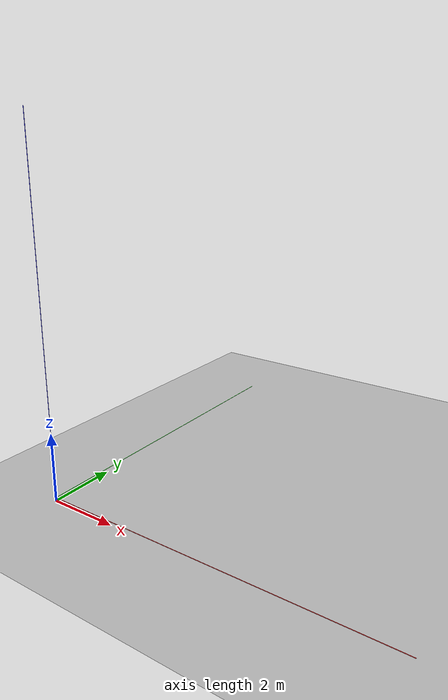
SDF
<sdf version="1.9">
 <world name="iris_runway">
  <physics name="1ms" type="ignore">
   <max_step_size>0.001</max_step_size>
   <real_time_factor>1.0</real_time_factor>
  </physics>
  <plugin filename="gz-sim-physics-system" name="gz::sim::systems::Physics"/>
  <plugin filename="gz-sim-sensors-system" name="gz::sim::systems::Sensors">
   <render_engine>ogre2</render_engine>
  </plugin>
  <plugin filename="gz-sim-user-commands-system" name="gz::sim::systems::UserCommands"/>
  <plugin filename="gz-sim-scene-broadcaster-system" name="gz::sim::systems::SceneBroadcaster"/>
  <plugin filename="gz-sim-imu-system" name="gz::sim::systems::Imu"/>
  <plugin filename="gz-sim-navsat-system" name="gz::sim::systems::NavSat"/>
  <scene><ambient>1.0 1.0 1.0</ambient><background>0.8 0.8 0.8</background></scene>
  <spherical_coordinates>
   <latitude_deg>-35.363262</latitude_deg>
   <longitude_deg>149.165237</longitude_deg>
   <elevation>584</elevation>
   <heading_deg>0</heading_deg>
   <surface_model>EARTH_WGS84</surface_model>
  </spherical_coordinates>
  <light type="directional" name="sun">
   <pose>0 0 10 0 0 0</pose>
   <diffuse>0.8 0.8 0.8 1</diffuse>
   <specular>0.8 0.8 0.8 1</specular>
   <attenuation>
    <range>1000</range>
    <constant>0.9</constant>
    <linear>0.01</linear>
    <quadratic>0.001</quadratic>
   </attenuation>
   <direction>-0.5 0.1 -0.9</direction>
  </light>
  <model name="axes">
   <static>1</static>
   <link name="link">
    <visual name="r">
     <cast_shadows>0</cast_shadows>
     <pose>5 0 0.1 0 0 0</pose>
     <geometry><box><size>10 0.01 0.01</size></box></geometry>
     <material>
      <ambient>1 0 0 0.8</ambient>
      <diffuse>1 0 0 0.8</diffuse>
      <emissive>1 0 0 0.8</emissive>
      <specular>0.5 0.5 0.5 0.8</specular>
     </material>
    </visual>
    <visual name="g">
     <cast_shadows>0</cast_shadows>
     <pose>0 5 0.1 0 0 0</pose>
     <geometry><box><size>0.01 10 0.01</size></box></geometry>
     <material>
      <ambient>0 1 0 0.8</ambient>
      <diffuse>0 1 0 0.8</diffuse>
      <emissive>0 1 0 0.8</emissive>
      <specular>0.5 0.5 0.5 0.8</specular>
     </material>
    </visual>
    <visual name="b">
     <cast_shadows>0</cast_shadows>
     <pose>0 0 5.1 0 0 0</pose>
     <geometry><box><size>0.01 0.01 10</size></box></geometry>
     <material>
      <ambient>0 0 1 0.8</ambient>
      <diffuse>0 0 1 0.8</diffuse>
      <emissive>0 0 1 0.8</emissive>
      <specular>0.5 0.5 0.5 0.8</specular>
     </material>
    </visual>
    <sensor name="navsat_sensor" type="navsat"><always_on>1</always_on><update_rate>1</update_rate></sensor>
   </link>
  </model>
  <include><uri>model://arena</uri><pose>0 0 0.047 0 0 0</pose></include>
 </world>
</sdf>

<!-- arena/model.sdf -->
<sdf version="1.4">

    <model name="arena">
      <pose>0 0 0 0 0 0</pose>
      <static>true</static>
      <link name="link">
        <visual name="visual">
          <geometry>
            <mesh>
              <uri>model://arena/meshes/arena.obj</uri>
              <scale>10 10 2</scale>
            </mesh>
          </geometry>
        </visual>

        <collision name="collision">
          <geometry>
            <plane>
              <normal>0 0 1</normal>
              <size>2.43 2.43</size>
            </plane>
          </geometry>
          <surface>
            <friction>
              <ode>
                <mu>100</mu>
                <mu2>50</mu2>
              </ode>
            </friction>
          </surface>
        </collision>
      </link>
    </model>

</sdf>
